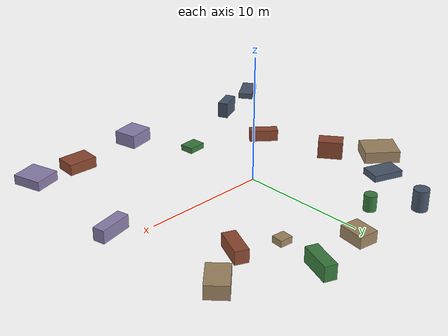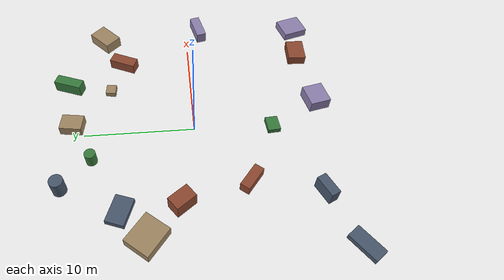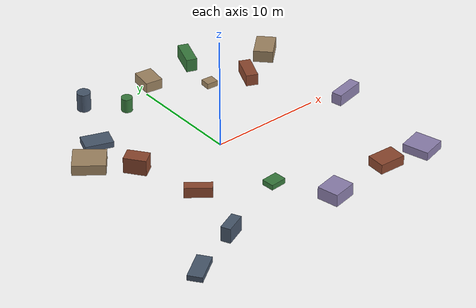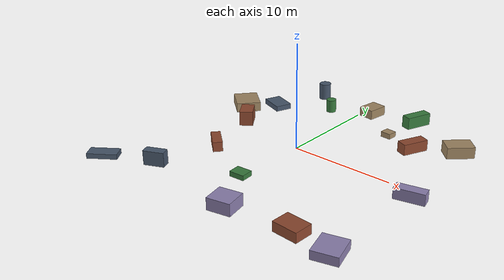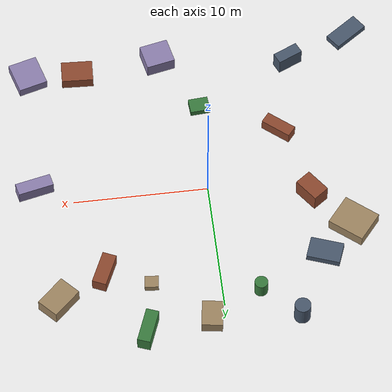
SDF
<sdf version="1.10">
 <world name="robotx_task1_uav_view">
  <gravity>0 0 -9.81</gravity>
  <physics name="physics" type="ode">
   <max_step_size>0.002</max_step_size>
   <real_time_factor>1.0</real_time_factor>
  </physics>
  <scene>
   <ambient>0.22 0.20 0.18 1.0</ambient>
   <background>0.74 0.55 0.44 1.0</background>
   <shadows>true</shadows>
   <grid>false</grid>
  </scene>
  <light name="sun" type="directional">
   <pose>0 0 300 0 0 0</pose>
   <diffuse>0.95 0.74 0.56 1.0</diffuse>
   <specular>1.00 0.87 0.71 1.0</specular>
   <direction>-0.40 0.20 -0.88</direction>
   <attenuation>
    <range>2500</range>
    <constant>0.85</constant>
    <linear>0.001</linear>
    <quadratic>0.00005</quadratic>
   </attenuation>
  </light>
  <plugin filename="gz-sim-physics-system" name="gz::sim::systems::Physics"/>
  <plugin filename="gz-sim-user-commands-system" name="gz::sim::systems::UserCommands"/>
  <plugin filename="gz-sim-scene-broadcaster-system" name="gz::sim::systems::SceneBroadcaster"/>
  <plugin filename="gz-sim-sensors-system" name="gz::sim::systems::Sensors">
   <render_engine>ogre2</render_engine>
  </plugin>
  <model name="scene_clutter_box_000">
   <static>true</static>
   <pose>11.930 8.453 0.562 0 0 -2.384885</pose>
   <link name="link">
    <visual name="v">
     <geometry><box><size>2.532 1.718 1.085</size></box></geometry>
     <material><ambient>0.45 0.38 0.32 1.0</ambient><diffuse>0.62 0.52 0.38 1.0</diffuse></material>
    </visual>
   </link>
  </model>
  <model name="scene_clutter_box_001">
   <static>true</static>
   <pose>-7.389 -10.429 0.705 0 0 1.999510</pose>
   <link name="link">
    <visual name="v">
     <geometry><box><size>0.867 1.958 1.371</size></box></geometry>
     <material><ambient>0.18 0.22 0.28 1.0</ambient><diffuse>0.28 0.34 0.42 1.0</diffuse></material>
    </visual>
   </link>
  </model>
  <model name="scene_clutter_box_002">
   <static>true</static>
   <pose>-5.885 -4.433 0.489 0 0 0.880668</pose>
   <link name="link">
    <visual name="v">
     <geometry><box><size>0.900 2.358 0.939</size></box></geometry>
     <material><ambient>0.35 0.16 0.12 1.0</ambient><diffuse>0.55 0.28 0.18 1.0</diffuse></material>
    </visual>
   </link>
  </model>
  <model name="scene_clutter_box_003">
   <static>true</static>
   <pose>-0.225 -7.178 0.257 0 0 -3.063340</pose>
   <link name="link">
    <visual name="v">
     <geometry><box><size>1.471 1.144 0.475</size></box></geometry>
     <material><ambient>0.12 0.30 0.14 1.0</ambient><diffuse>0.22 0.48 0.24 1.0</diffuse></material>
    </visual>
   </link>
  </model>
  <model name="scene_clutter_box_004">
   <static>true</static>
   <pose>2.431 -11.713 0.582 0 0 -2.930894</pose>
   <link name="link">
    <visual name="v">
     <geometry><box><size>2.163 1.932 1.124</size></box></geometry>
     <material><ambient>0.40 0.35 0.50 1.0</ambient><diffuse>0.55 0.50 0.68 1.0</diffuse></material>
    </visual>
   </link>
  </model>
  <model name="scene_clutter_box_005">
   <static>true</static>
   <pose>-10.293 4.356 0.491 0 0 2.457573</pose>
   <link name="link">
    <visual name="v">
     <geometry><box><size>2.840 2.439 0.942</size></box></geometry>
     <material><ambient>0.45 0.38 0.32 1.0</ambient><diffuse>0.62 0.52 0.38 1.0</diffuse></material>
    </visual>
   </link>
  </model>
  <model name="scene_clutter_cyl_006">
   <static>true</static>
   <pose>-5.475 11.601 0.887 0 0 1.321650</pose>
   <link name="link">
    <visual name="v">
     <geometry><cylinder><radius>0.599</radius><length>1.673</length></cylinder></geometry>
     <material><ambient>0.18 0.22 0.28 1.0</ambient><diffuse>0.28 0.34 0.42 1.0</diffuse></material>
    </visual>
   </link>
  </model>
  <model name="scene_clutter_box_007">
   <static>true</static>
   <pose>8.614 -11.009 0.468 0 0 -0.045355</pose>
   <link name="link">
    <visual name="v">
     <geometry><box><size>2.354 1.688 0.896</size></box></geometry>
     <material><ambient>0.35 0.16 0.12 1.0</ambient><diffuse>0.55 0.28 0.18 1.0</diffuse></material>
    </visual>
   </link>
  </model>
  <model name="scene_clutter_box_008">
   <static>true</static>
   <pose>5.765 11.639 0.614 0 0 -1.935029</pose>
   <link name="link">
    <visual name="v">
     <geometry><box><size>2.621 0.959 1.188</size></box></geometry>
     <material><ambient>0.12 0.30 0.14 1.0</ambient><diffuse>0.22 0.48 0.24 1.0</diffuse></material>
    </visual>
   </link>
  </model>
  <model name="scene_clutter_box_009">
   <static>true</static>
   <pose>12.772 -1.290 0.539 0 0 -2.921236</pose>
   <link name="link">
    <visual name="v">
     <geometry><box><size>2.676 0.952 1.038</size></box></geometry>
     <material><ambient>0.40 0.35 0.50 1.0</ambient><diffuse>0.55 0.50 0.68 1.0</diffuse></material>
    </visual>
   </link>
  </model>
  <model name="scene_clutter_box_010">
   <static>true</static>
   <pose>5.068 7.676 0.275 0 0 -1.660193</pose>
   <link name="link">
    <visual name="v">
     <geometry><box><size>0.924 1.020 0.511</size></box></geometry>
     <material><ambient>0.45 0.38 0.32 1.0</ambient><diffuse>0.62 0.52 0.38 1.0</diffuse></material>
    </visual>
   </link>
  </model>
  <model name="scene_clutter_box_011">
   <static>true</static>
   <pose>-7.873 6.556 0.285 0 0 -1.922281</pose>
   <link name="link">
    <visual name="v">
     <geometry><box><size>1.654 2.482 0.531</size></box></geometry>
     <material><ambient>0.18 0.22 0.28 1.0</ambient><diffuse>0.28 0.34 0.42 1.0</diffuse></material>
    </visual>
   </link>
  </model>
  <model name="scene_clutter_box_012">
   <static>true</static>
   <pose>-7.571 1.494 0.745 0 0 2.203392</pose>
   <link name="link">
    <visual name="v">
     <geometry><box><size>1.980 1.302 1.450</size></box></geometry>
     <material><ambient>0.35 0.16 0.12 1.0</ambient><diffuse>0.55 0.28 0.18 1.0</diffuse></material>
    </visual>
   </link>
  </model>
  <model name="scene_clutter_cyl_013">
   <static>true</static>
   <pose>-2.790 9.115 0.687 0 0 0.887198</pose>
   <link name="link">
    <visual name="v">
     <geometry><cylinder><radius>0.491</radius><length>1.275</length></cylinder></geometry>
     <material><ambient>0.12 0.30 0.14 1.0</ambient><diffuse>0.22 0.48 0.24 1.0</diffuse></material>
    </visual>
   </link>
  </model>
  <model name="scene_clutter_box_014">
   <static>true</static>
   <pose>12.333 -11.306 0.406 0 0 -1.295322</pose>
   <link name="link">
    <visual name="v">
     <geometry><box><size>2.394 2.184 0.772</size></box></geometry>
     <material><ambient>0.40 0.35 0.50 1.0</ambient><diffuse>0.55 0.50 0.68 1.0</diffuse></material>
    </visual>
   </link>
  </model>
  <model name="scene_clutter_box_015">
   <static>true</static>
   <pose>1.026 11.040 0.485 0 0 -0.145338</pose>
   <link name="link">
    <visual name="v">
     <geometry><box><size>1.546 1.995 0.930</size></box></geometry>
     <material><ambient>0.45 0.38 0.32 1.0</ambient><diffuse>0.62 0.52 0.38 1.0</diffuse></material>
    </visual>
   </link>
  </model>
  <model name="scene_clutter_box_016">
   <static>true</static>
   <pose>-12.173 -12.449 0.261 0 0 0.617684</pose>
   <link name="link">
    <visual name="v">
     <geometry><box><size>2.786 1.288 0.481</size></box></geometry>
     <material><ambient>0.18 0.22 0.28 1.0</ambient><diffuse>0.28 0.34 0.42 1.0</diffuse></material>
    </visual>
   </link>
  </model>
  <model name="scene_clutter_box_017">
   <static>true</static>
   <pose>8.394 6.463 0.542 0 0 1.150359</pose>
   <link name="link">
    <visual name="v">
     <geometry><box><size>2.523 1.051 1.044</size></box></geometry>
     <material><ambient>0.35 0.16 0.12 1.0</ambient><diffuse>0.55 0.28 0.18 1.0</diffuse></material>
    </visual>
   </link>
  </model>
  <model name="uav_dataset_camera">
   <static>false</static>
   <pose>0 0 26 0 0 0</pose>
   <plugin filename="librobotx_overhead_motion_plugin.dylib" name="robotx::OverheadMotionPlugin">
    <radius_x_m>12.40013</radius_x_m>
    <radius_y_m>11.26257</radius_y_m>
    <angular_speed_rad_s>0.035768</angular_speed_rad_s>
    <phase_rad>6.194194</phase_rad>
    <z_wobble_m>0.03210</z_wobble_m>
    <z_wobble_hz>0.03728</z_wobble_hz>
    <z_wobble_phase_rad>3.003879</z_wobble_phase_rad>
   </plugin>
   <link name="camera_link">
    <gravity>false</gravity>
    <sensor name="top_down_rgb" type="camera">
     <always_on>true</always_on>
     <update_rate>20</update_rate>
     <pose>0 0 0 0 1.57079632679 0</pose>
     <camera>
      <horizontal_fov>1.05</horizontal_fov>
      <image><width>1920</width><height>1080</height><format>R8G8B8</format></image>
      <clip><near>0.2</near><far>600</far></clip>
     </camera>
     <topic>/robotx/uav/camera/image_raw</topic>
     <visualize>true</visualize>
    </sensor>
   </link>
  </model>
 </world>
</sdf>
